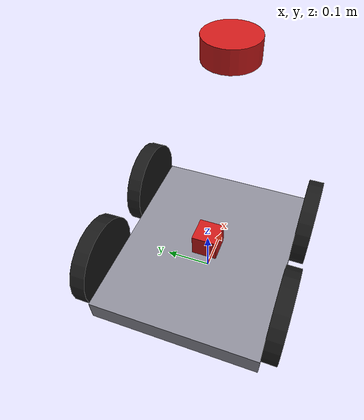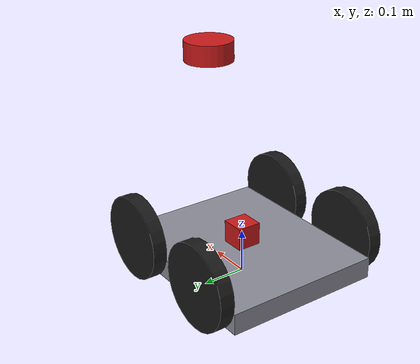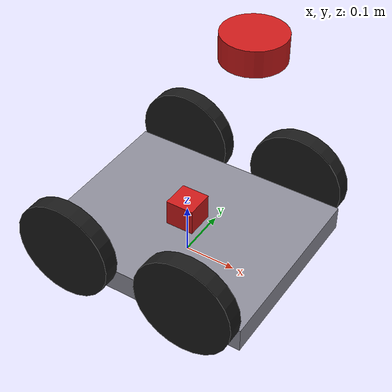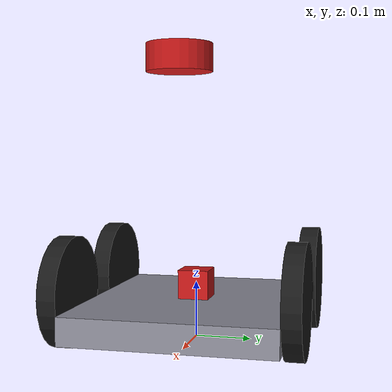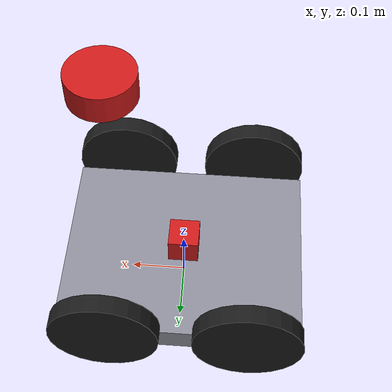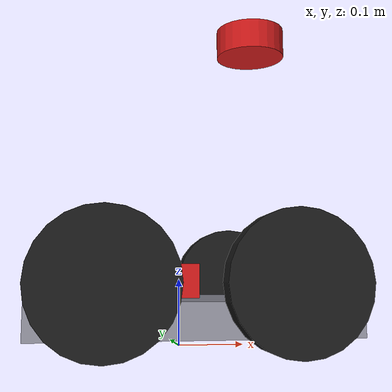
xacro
<?xml version="1.0"?>
<robot name="chuddy" xmlns:xacro="http://www.ros.org/wiki/xacro">

  <!-- Includes (relative paths resolve from this file's folder; in a package you
       can also use $(find chud_description)/urdf/robot_dimensions.xacro) -->
  <xacro:include filename="robot_dimensions.xacro"/>
  <xacro:include filename="inertial_macros.xacro"/>
  <xacro:include filename="materials.xacro"/>

  <!-- ============ Base ============ -->
  <link name="base_footprint"/>

  <joint name="base_footprint_joint" type="fixed">
    <parent link="base_footprint"/>
    <child link="base_link"/>
    <origin xyz="0 0 ${wheel_radius}" rpy="0 0 0"/>
  </joint>

  <link name="base_link">
    <visual>
      <origin xyz="0 0 ${base_z_offset}" rpy="0 0 0"/>
      <geometry><box size="${base_length} ${base_width} ${base_height}"/></geometry>
      <material name="body_grey"/>
    </visual>
    <collision>
      <origin xyz="0 0 ${base_z_offset}" rpy="0 0 0"/>
      <geometry><box size="${base_length} ${base_width} ${base_height}"/></geometry>
    </collision>
    <xacro:box_inertia m="${base_mass}" x="${base_length}" y="${base_width}" z="${base_height}">
      <origin xyz="0 0 ${base_z_offset}" rpy="0 0 0"/>
    </xacro:box_inertia>
  </link>

  <!-- ============ Drive wheels ============ -->
  <!-- x_dir: +1 = front, -1 = rear; y_dir: +1 = left, -1 = right.
       All wheel axles point along y, so positive joint velocity drives +x. -->
  <xacro:macro name="drive_wheel" params="prefix x_dir y_dir">
    <link name="${prefix}_wheel_link">
      <visual>
        <geometry><cylinder radius="${wheel_radius}" length="${wheel_width}"/></geometry>
        <material name="wheel_black"/>
      </visual>
      <collision>
        <geometry><cylinder radius="${wheel_radius}" length="${wheel_width}"/></geometry>
      </collision>
      <xacro:cylinder_inertia m="${wheel_mass}" r="${wheel_radius}" h="${wheel_width}">
        <origin xyz="0 0 0" rpy="0 0 0"/>
      </xacro:cylinder_inertia>
    </link>

    <joint name="${prefix}_wheel_joint" type="continuous">
      <parent link="base_link"/>
      <child link="${prefix}_wheel_link"/>
      <origin xyz="${x_dir * wheel_offset_x} ${y_dir * wheel_offset_y} 0" rpy="${pi/2} 0 0"/>
      <axis xyz="0 0 1"/>
    </joint>
  </xacro:macro>

  <xacro:drive_wheel prefix="front_left"  x_dir="1"  y_dir="1"/>
  <xacro:drive_wheel prefix="front_right" x_dir="1"  y_dir="-1"/>
  <xacro:drive_wheel prefix="rear_left"   x_dir="-1" y_dir="1"/>
  <xacro:drive_wheel prefix="rear_right"  x_dir="-1" y_dir="-1"/>

  <!-- ============ Lidar (mounted on top of chassis) ============ -->
  <link name="laser_link">
    <visual>
      <geometry><cylinder radius="${laser_radius}" length="${laser_height}"/></geometry>
      <material name="laser_red"/>
    </visual>
    <collision>
      <geometry><cylinder radius="${laser_radius}" length="${laser_height}"/></geometry>
    </collision>
    <xacro:cylinder_inertia m="${laser_mass}" r="${laser_radius}" h="${laser_height}">
      <origin xyz="0 0 0" rpy="0 0 0"/>
    </xacro:cylinder_inertia>
  </link>

  <joint name="laser_joint" type="fixed">
    <parent link="base_link"/>
    <child link="laser_link"/>
    <origin xyz="${laser_x} ${laser_y} ${laser_z}" rpy="0 0 0"/>
  </joint>

  <!-- ============ IMU ============ -->
  <link name="imu_link">
    <visual>
      <geometry><box size="${imu_size} ${imu_size} ${imu_size}"/></geometry>
      <material name="laser_red"/>
    </visual>
    <collision>
      <geometry><box size="${imu_size} ${imu_size} ${imu_size}"/></geometry>
    </collision>
    <xacro:box_inertia m="${imu_mass}" x="${imu_size}" y="${imu_size}" z="${imu_size}">
      <origin xyz="0 0 0" rpy="0 0 0"/>
    </xacro:box_inertia>
  </link>

  <!-- Frame follows the ROS convention: x forward, y left, z up.
       If the real IMU is mounted rotated, put that rotation in rpy. -->
  <joint name="imu_joint" type="fixed">
    <parent link="base_link"/>
    <child link="imu_link"/>
    <origin xyz="${imu_x} ${imu_y} ${imu_z}" rpy="0 0 0"/>
  </joint>

</robot>

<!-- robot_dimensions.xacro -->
<!-- robot_dimensions.xacro
     Single source of truth for every dimension, mass and offset.
     Change numbers here; nothing else needs touching. Units: meters, kilograms, radians. -->
<robot xmlns:xacro="http://www.ros.org/wiki/xacro">

   <!-- Base chassis (forward is +x) -->
   <xacro:property name="base_length" value="0.44"/>
   <xacro:property name="base_width"  value="0.36"/>
  <xacro:property name="base_height" value="0.048"/>
  <xacro:property name="base_mass"   value=".846"/>
  <xacro:property name="ground_clearance" value="0.024"/> <!-- bottom of chassis to floor -->

  <!-- Drive wheels -->
  <xacro:property name="wheel_radius" value="0.096"/>
  <xacro:property name="wheel_width"  value="0.032"/>
  <xacro:property name="wheel_mass"   value="0.142"/>
   <!-- Sidewalls meet the chassis sides; tire radius reaches the front/rear edges. -->
   <xacro:property name="wheel_offset_x" value="${base_length/2 - wheel_radius}"/>
   <xacro:property name="wheel_offset_y" value="${base_width/2 + wheel_width/2}"/>

  <!-- Lidar -->
  <xacro:property name="laser_radius" value="0.055"/>
  <xacro:property name="laser_height" value="0.046"/>
  <xacro:property name="laser_mass"   value="0.11"/>
  <!-- Lidar position -->
     <xacro:property name="laser_x" value="0.12"/>
     <xacro:property name="laser_y" value="0.0"/>
     <xacro:property name="laser_z" value="${base_z_offset + base_height + 0.393}"/>

  <!-- IMU (small cube) -->
  <xacro:property name="imu_size" value="0.055"/>
  <xacro:property name="imu_mass" value="0.05"/>
   <!-- position in the base_link frame: centred on chassis, mid-height. Change to match real mounting -->
  <xacro:property name="imu_x" value="0.0"/>
  <xacro:property name="imu_y" value="0.0"/>
  <xacro:property name="imu_z" value="${base_z_offset + base_height}"/>

  <!-- Derived: base_link frame sits at axle height, so the footprint->base_link
       transform is exactly one wheel radius. The chassis box is shifted up
       inside base_link so it clears the ground. -->
  <xacro:property name="base_z_offset"
                  value="${ground_clearance + base_height/2 - wheel_radius}"/>

</robot>

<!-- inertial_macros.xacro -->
<!-- inertial_macros.xacro
     Physics simulators need mass + inertia on every link that moves or collides.
     These compute the inertia tensor from the shape so you never hand-type it. -->
<robot xmlns:xacro="http://www.ros.org/wiki/xacro">

  <!-- Solid box: x=length, y=width, z=height -->
  <xacro:macro name="box_inertia" params="m x y z *origin">
    <inertial>
      <xacro:insert_block name="origin"/>
      <mass value="${m}"/>
      <inertia ixx="${(m/12) * (y*y + z*z)}" ixy="0.0" ixz="0.0"
               iyy="${(m/12) * (x*x + z*z)}" iyz="0.0"
               izz="${(m/12) * (x*x + y*y)}"/>
    </inertial>
  </xacro:macro>

  <!-- Solid cylinder, axis along the link's local Z -->
  <xacro:macro name="cylinder_inertia" params="m r h *origin">
    <inertial>
      <xacro:insert_block name="origin"/>
      <mass value="${m}"/>
      <inertia ixx="${(m/12) * (3*r*r + h*h)}" ixy="0.0" ixz="0.0"
               iyy="${(m/12) * (3*r*r + h*h)}" iyz="0.0"
               izz="${(m/2) * (r*r)}"/>
    </inertial>
  </xacro:macro>

  <!-- Solid sphere -->
  <xacro:macro name="sphere_inertia" params="m r *origin">
    <inertial>
      <xacro:insert_block name="origin"/>
      <mass value="${m}"/>
      <inertia ixx="${(2/5) * m * r*r}" ixy="0.0" ixz="0.0"
               iyy="${(2/5) * m * r*r}" iyz="0.0"
               izz="${(2/5) * m * r*r}"/>
    </inertial>
  </xacro:macro>

</robot>

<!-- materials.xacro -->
<!-- materials.xacro : named colours so visuals aren't all default white -->
<robot xmlns:xacro="http://www.ros.org/wiki/xacro">
  <material name="body_grey"> <color rgba="0.55 0.55 0.60 1.0"/> </material>
  <material name="wheel_black"><color rgba="0.10 0.10 0.10 1.0"/> </material>
  <material name="laser_red">  <color rgba="0.80 0.10 0.10 1.0"/> </material>
</robot>
